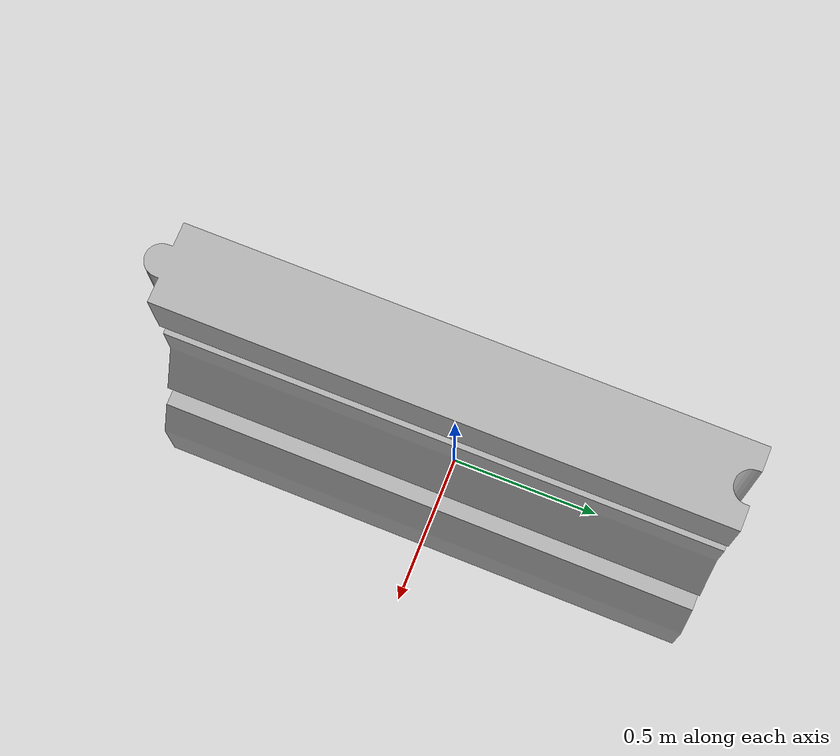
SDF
<?xml version="1.0"?>
<sdf version="1.4">
  <model name="barrier1">
    <static>true</static>
    <link name="link">
      <pose>0 0 0 0 0 0</pose>
      <collision name="collision">
        <geometry>
          <mesh>
             <uri>model://barrier1/models/barrier1.dae</uri>
	     <scale>1 1 1</scale>
          </mesh>
        </geometry>
      </collision>
      <visual name="visual">
         <geometry>
          <mesh>
             <uri>model://barrier1/models/barrier1.dae</uri>
	     <scale>1 1 1</scale>
          </mesh>
        </geometry>
      </visual>
    </link>
  </model>
</sdf>
